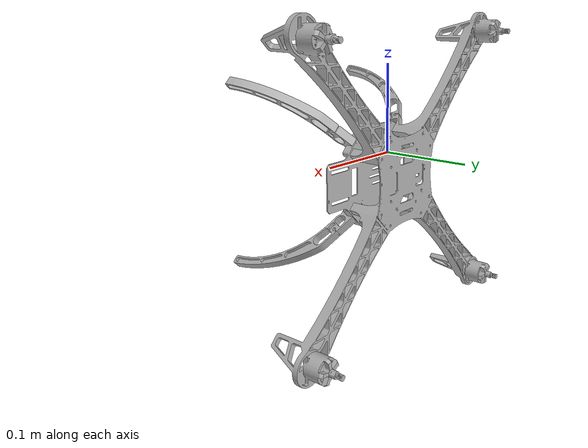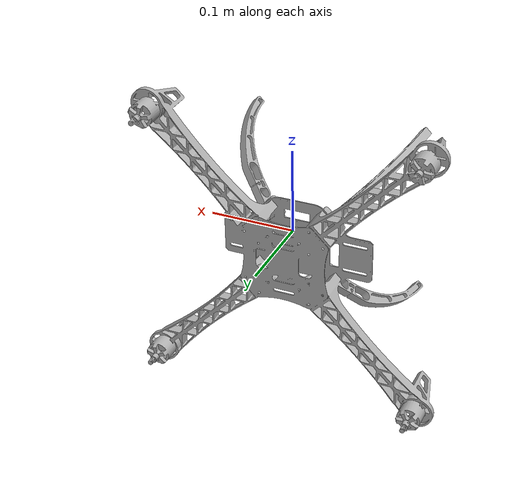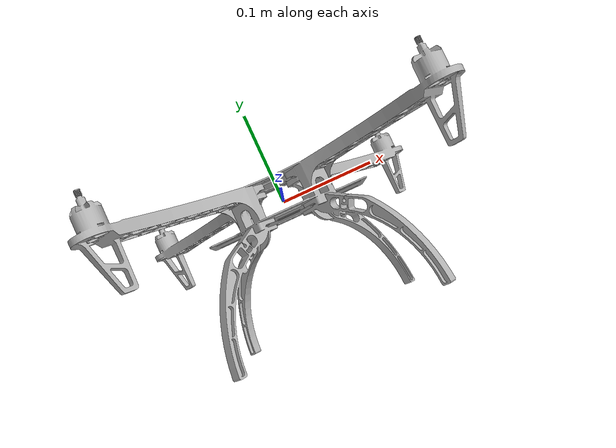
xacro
<?xml version="1.0" ?>
<robot name="F450" xmlns:xacro="http://www.ros.org/wiki/xacro">

  <!-- Include Files -->
  <xacro:include filename="$(find F450_description)/urdf/materials.xacro" />
  <xacro:include filename="$(find F450_description)/urdf/F450.trans" />
  <xacro:include filename="$(find F450_description)/urdf/F450.gazebo" />

  <!-- Base Link -->
  <link name="base_link">
    <inertial>
      <origin xyz="-1.054264181030751e-07 0.0025919260853499893 -0.026708763818450765" rpy="0 0 0"/>
      <mass value="2.1650499079872736"/>
      <inertia ixx="0.024339" iyy="0.043382" izz="0.02453" ixy="0.0" iyz="-4e-06" ixz="-0.0"/>
    </inertial>
    <visual>
      <origin xyz="0 0 0" rpy="0 0 0"/>
      <geometry>
        <mesh filename="file://$(find F450_description)/meshes/base_link.stl" scale="0.001 0.001 0.001"/>
      </geometry>
      <material name="silver"/>
    </visual>
    <collision>
      <origin xyz="0 0 0" rpy="0 0 0"/>
      <geometry>
        <mesh filename="file://$(find F450_description)/meshes/base_link.stl" scale="0.001 0.001 0.001"/>
      </geometry>
    </collision>
  </link>

  <!-- Gazebo Plugins for Base Link -->
  <gazebo>
    <plugin name="gz::sim::systems::JointStatePublisher" filename="gz-sim-joint-state-publisher-system"/>
  </gazebo>

  <!-- Propeller Links and Plugins -->
  <link name="Prop_1_1">
    <!-- Define link properties -->
    <gazebo reference="Prop_1_1">
      <plugin filename="gz-sim-lift-drag-system" name="gz::sim::systems::LiftDrag">
        <a0>0.3</a0>
        <alpha_stall>1.4</alpha_stall>
        <cla>4.2500</cla>
        <cda>0.10</cda>
        <cma>0.0</cma>
        <cla_stall>-0.025</cla_stall>
        <cda_stall>0.0</cda_stall>
        <cma_stall>0.0</cma_stall>
        <area>0.002</area>
        <air_density>1.2041</air_density>
        <cp>0.084 0 0</cp>
        <forward>0 1 0</forward>
        <upward>0 0 1</upward>
        <link_name>Prop_1_1</link_name>
      </plugin>
    </gazebo>
  </link>

  <link name="Prop_2_1">
    <!-- Define link properties -->
    <gazebo reference="Prop_2_1">
      <plugin filename="gz-sim-lift-drag-system" name="gz::sim::systems::LiftDrag">
        <a0>0.3</a0>
        <alpha_stall>1.4</alpha_stall>
        <cla>4.2500</cla>
        <cda>0.10</cda>
        <cma>0.0</cma>
        <cla_stall>-0.025</cla_stall>
        <cda_stall>0.0</cda_stall>
        <cma_stall>0.0</cma_stall>
        <area>0.002</area>
        <air_density>1.2041</air_density>
        <cp>-0.084 0 0</cp>
        <forward>0 -1 0</forward>
        <upward>0 0 1</upward>
        <link_name>Prop_2_1</link_name>
      </plugin>
    </gazebo>
  </link>

  <link name="Prop_3_1">
    <!-- Define link properties -->
    <gazebo reference="Prop_3_1">
      <plugin filename="gz-sim-lift-drag-system" name="gz::sim::systems::LiftDrag">
        <a0>0.3</a0>
        <alpha_stall>1.4</alpha_stall>
        <cla>4.2500</cla>
        <cda>0.10</cda>
        <cma>0.0</cma>
        <cla_stall>-0.025</cla_stall>
        <cda_stall>0.0</cda_stall>
        <cma_stall>0.0</cma_stall>
        <area>0.002</area>
        <air_density>1.2041</air_density>
        <cp>0.084 0 0</cp>
        <forward>0 1 0</forward>
        <upward>0 0 1</upward>
        <link_name>Prop_3_1</link_name>
      </plugin>
    </gazebo>
  </link>

  <link name="Prop_4_1">
    <!-- Define link properties -->
    <gazebo reference="Prop_4_1">
      <plugin filename="gz-sim-lift-drag-system" name="gz::sim::systems::LiftDrag">
        <a0>0.3</a0>
        <alpha_stall>1.4</alpha_stall>
        <cla>4.2500</cla>
        <cda>0.10</cda>
        <cma>0.0</cma>
        <cla_stall>-0.025</cla_stall>
        <cda_stall>0.0</cda_stall>
        <cma_stall>0.0</cma_stall>
        <area>0.002</area>
        <air_density>1.2041</air_density>
        <cp>-0.084 0 0</cp>
        <forward>0 -1 0</forward>
        <upward>0 0 1</upward>
        <link_name>Prop_4_1</link_name>
      </plugin>
    </gazebo>
  </link>

  <!-- Joints Configuration -->
  <joint name="Revolute 1" type="continuous">
    <origin xyz="0.159099 0.050384 0.132271" rpy="0 0 0"/>
    <parent link="base_link"/>
    <child link="Prop_1_1"/>
    <axis xyz="0.0 1.0 0.0"/>
    <gazebo>
      <plugin filename="gz-sim-apply-joint-force-system" name="gz::sim::systems::ApplyJointForce">
        <joint_name>Revolute 1</joint_name>
      </plugin>
    </gazebo>
  </joint>

  <joint name="Revolute 2" type="continuous">
    <origin xyz="0.159099 0.050384 -0.185927" rpy="0 0 0"/>
    <parent link="base_link"/>
    <child link="Prop_2_1"/>
    <axis xyz="0.0 1.0 0.0"/>
    <gazebo>
      <plugin filename="gz-sim-apply-joint-force-system" name="gz::sim::systems::ApplyJointForce">
        <joint_name>Revolute 2</joint_name>
      </plugin>
    </gazebo>
  </joint>

  <joint name="Revolute 3" type="continuous">
    <origin xyz="-0.159099 0.050384 -0.185927" rpy="0 0 0"/>
    <parent link="base_link"/>
    <child link="Prop_3_1"/>
    <axis xyz="0.0 1.0 0.0"/>
    <gazebo>
      <plugin filename="gz-sim-apply-joint-force-system" name="gz::sim::systems::ApplyJointForce">
        <joint_name>Revolute 3</joint_name>
      </plugin>
    </gazebo>
  </joint>

  <joint name="Revolute 4" type="continuous">
    <origin xyz="-0.159099 0.050384 0.132271" rpy="0 0 0"/>
    <parent link="base_link"/>
    <child link="Prop_4_1"/>
    <axis xyz="0.0 1.0 0.0"/>
    <gazebo>
      <plugin filename="gz-sim-apply-joint-force-system" name="gz::sim::systems::ApplyJointForce">
        <joint_name>Revolute 4</joint_name>
      </plugin>
    </gazebo>
  </joint>

    <plugin name="ArduPilotPlugin"
      filename="ArduPilotPlugin">
      <!-- Port settings -->
      <fdm_addr>127.0.0.1</fdm_addr>
      <fdm_port_in>9002</fdm_port_in>
      <connectionTimeoutMaxCount>5</connectionTimeoutMaxCount>
      <lock_step>1</lock_step>

      <!-- Frame conventions
        Require by ArduPilot: change model and gazebo from XYZ to XY-Z coordinates
      -->
      <modelXYZToAirplaneXForwardZDown degrees="true">0 0 0 180 0 0</modelXYZToAirplaneXForwardZDown>
      <gazeboXYZToNED degrees="true">0 0 0 180 0 90</gazeboXYZToNED>

      <!-- Sensors -->
      <imuName>iris_with_standoffs::imu_link::imu_sensor</imuName>

      <!--
          incoming control command [0, 1]
          so offset it by 0 to get [0, 1]
          and divide max target by 1.
          offset = 0
          multiplier = 838 max rpm / 1 = 838
        -->
      <control channel="0">
        <jointName>Revolute 1</jointName>
        <useForce>1</useForce>
        <multiplier>838</multiplier>
        <offset>0</offset>
        <servo_min>1100</servo_min>
        <servo_max>1900</servo_max>
        <type>VELOCITY</type>
        <p_gain>0.20</p_gain>
        <i_gain>0</i_gain>
        <d_gain>0</d_gain>
        <i_max>0</i_max>
        <i_min>0</i_min>
        <cmd_max>2.5</cmd_max>
        <cmd_min>-2.5</cmd_min>
        <controlVelocitySlowdownSim>1</controlVelocitySlowdownSim>
      </control>

      <control channel="1">
        <jointName>Revolute 2</jointName>
        <useForce>1</useForce>
        <multiplier>838</multiplier>
        <offset>0</offset>
        <servo_min>1100</servo_min>
        <servo_max>1900</servo_max>
        <type>VELOCITY</type>
        <p_gain>0.20</p_gain>
        <i_gain>0</i_gain>
        <d_gain>0</d_gain>
        <i_max>0</i_max>
        <i_min>0</i_min>
        <cmd_max>2.5</cmd_max>
        <cmd_min>-2.5</cmd_min>
        <controlVelocitySlowdownSim>1</controlVelocitySlowdownSim>
      </control>

      <control channel="2">
        <jointName>Revolute 3</jointName>
        <useForce>1</useForce>
        <multiplier>-838</multiplier>
        <offset>0</offset>
        <servo_min>1100</servo_min>
        <servo_max>1900</servo_max>
        <type>VELOCITY</type>
        <p_gain>0.20</p_gain>
        <i_gain>0</i_gain>
        <d_gain>0</d_gain>
        <i_max>0</i_max>
        <i_min>0</i_min>
        <cmd_max>2.5</cmd_max>
        <cmd_min>-2.5</cmd_min>
        <controlVelocitySlowdownSim>1</controlVelocitySlowdownSim>
      </control>

      <control channel="3">
        <jointName>Revolute 4</jointName>
        <useForce>1</useForce>
        <multiplier>-838</multiplier>
        <offset>0</offset>
        <servo_min>1100</servo_min>
        <servo_max>1900</servo_max>
        <type>VELOCITY</type>
        <p_gain>0.20</p_gain>
        <i_gain>0</i_gain>
        <d_gain>0</d_gain>
        <i_max>0</i_max>
        <i_min>0</i_min>
        <cmd_max>2.5</cmd_max>
        <cmd_min>-2.5</cmd_min>
        <controlVelocitySlowdownSim>1</controlVelocitySlowdownSim>
      </control>
    </plugin>

</robot>

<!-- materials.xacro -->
<robot name="F450" xmlns:xacro="http://www.ros.org/wiki/xacro" >

<material name="silver">
  <color rgba="0.700 0.700 0.700 1.000"/>
</material>

</robot>

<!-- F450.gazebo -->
<robot name="F450" xmlns:xacro="http://www.ros.org/wiki/xacro" >

<xacro:property name="body_color" value="Gazebo/Silver" />

<gazebo>
  <plugin name="control" filename="libgazebo_ros_control.so"/>
</gazebo>
<gazebo reference="base_link">
  <material>${body_color}</material>
  <mu1>0.2</mu1>
  <mu2>0.2</mu2>
  <self_collide>true</self_collide>
  <gravity>true</gravity>
</gazebo>

<gazebo reference="Prop_1_1">
  <material>${body_color}</material>
  <mu1>0.2</mu1>
  <mu2>0.2</mu2>
  <self_collide>true</self_collide>
</gazebo>

<gazebo reference="Prop_2_1">
  <material>${body_color}</material>
  <mu1>0.2</mu1>
  <mu2>0.2</mu2>
  <self_collide>true</self_collide>
</gazebo>

<gazebo reference="Prop_3_1">
  <material>${body_color}</material>
  <mu1>0.2</mu1>
  <mu2>0.2</mu2>
  <self_collide>true</self_collide>
</gazebo>

<gazebo reference="Prop_4_1">
  <material>${body_color}</material>
  <mu1>0.2</mu1>
  <mu2>0.2</mu2>
  <self_collide>true</self_collide>
</gazebo>

</robot>
